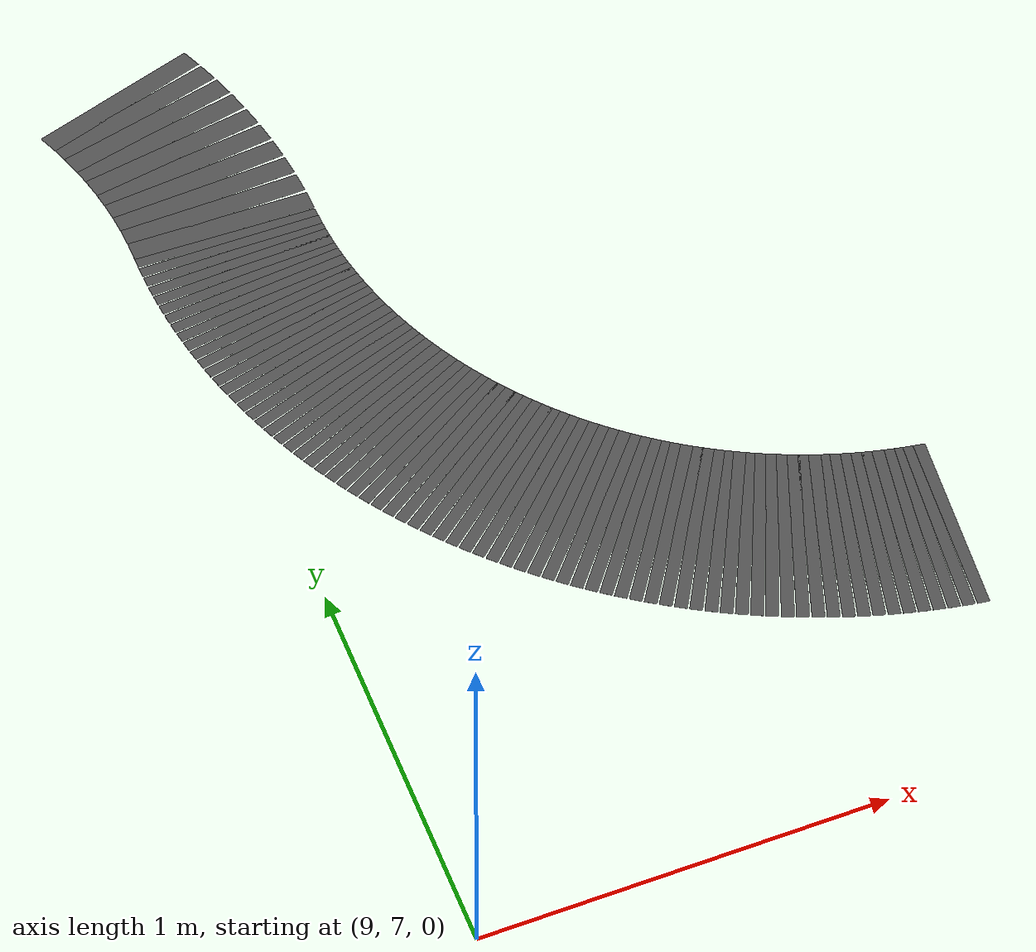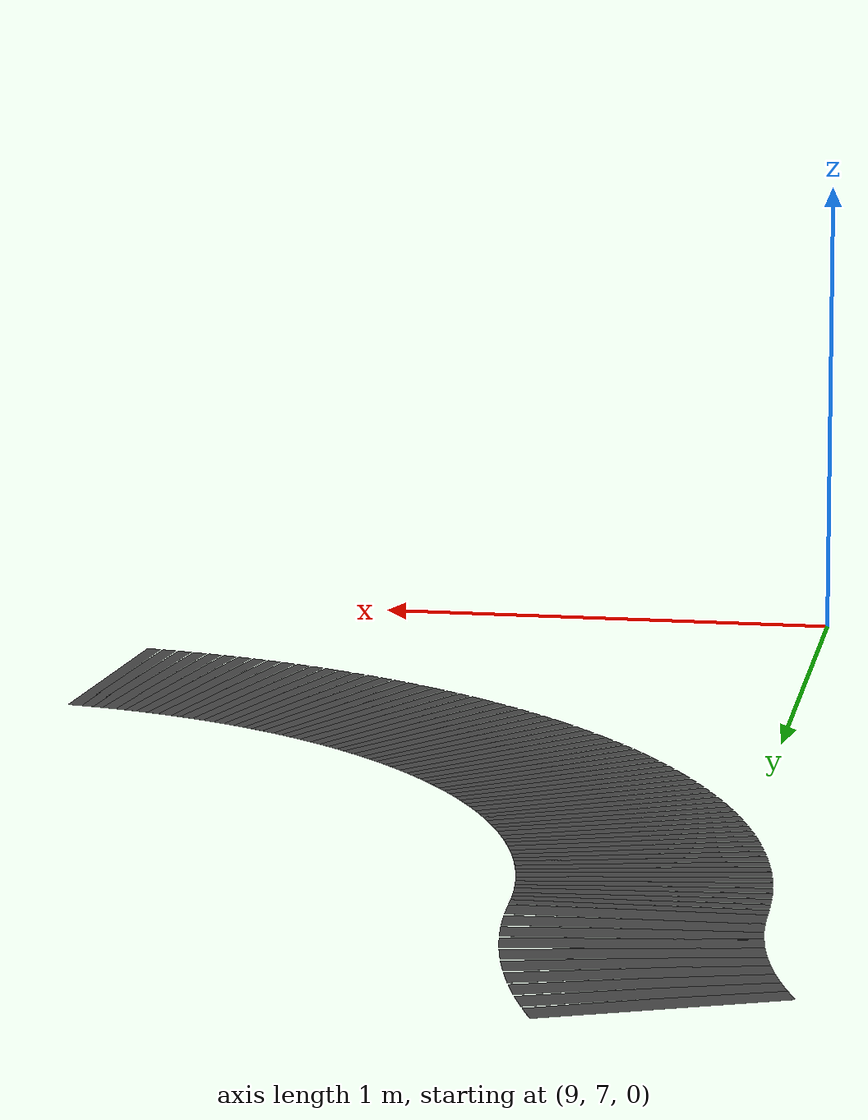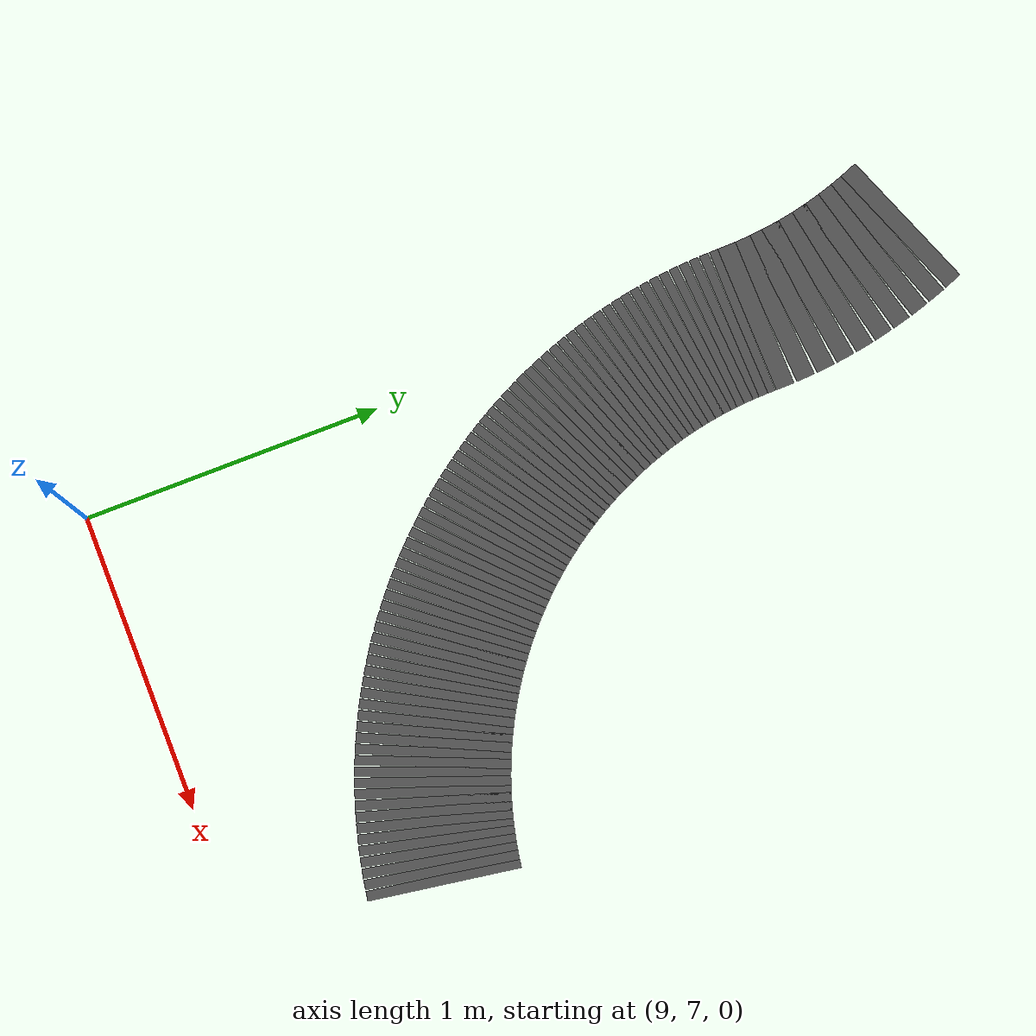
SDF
<sdf version="1.7">
 <model name="default">
  <model name="road_seg_145">
   <static>1</static>
   <link name="road_link">
    <visual name="road_visual">
     <geometry><box><size>0.031318 0.5 0.0001</size></box></geometry>
     <material>
      <script>
       <uri>model://road_material/materials/scripts</uri>
       <uri>model://road_material/materials/textures</uri>
       <name>MyRoad/Road</name>
      </script>
     </material>
    </visual>
    <collision name="road_collision"><geometry><box><size>0.031318 0.5 0.0001</size></box></geometry></collision>
   </link>
   <pose>10.4912 7.66771 0 0 -0 2.99247</pose>
  </model>
  <model name="road_seg_146">
   <static>1</static>
   <link name="road_link">
    <visual name="road_visual">
     <geometry><box><size>0.031318 0.5 0.0001</size></box></geometry>
     <material>
      <script>
       <uri>model://road_material/materials/scripts</uri>
       <uri>model://road_material/materials/textures</uri>
       <name>MyRoad/Road</name>
      </script>
     </material>
    </visual>
    <collision name="road_collision"><geometry><box><size>0.031318 0.5 0.0001</size></box></geometry></collision>
   </link>
   <pose>10.4603 7.67267 0 0 -0 2.97258</pose>
  </model>
  <model name="road_seg_147">
   <static>1</static>
   <link name="road_link">
    <visual name="road_visual">
     <geometry><box><size>0.031318 0.5 0.0001</size></box></geometry>
     <material>
      <script>
       <uri>model://road_material/materials/scripts</uri>
       <uri>model://road_material/materials/textures</uri>
       <name>MyRoad/Road</name>
      </script>
     </material>
    </visual>
    <collision name="road_collision"><geometry><box><size>0.031318 0.5 0.0001</size></box></geometry></collision>
   </link>
   <pose>10.4295 7.67825 0 0 -0 2.9527</pose>
  </model>
  <model name="road_seg_148">
   <static>1</static>
   <link name="road_link">
    <visual name="road_visual">
     <geometry><box><size>0.031318 0.5 0.0001</size></box></geometry>
     <material>
      <script>
       <uri>model://road_material/materials/scripts</uri>
       <uri>model://road_material/materials/textures</uri>
       <name>MyRoad/Road</name>
      </script>
     </material>
    </visual>
    <collision name="road_collision"><geometry><box><size>0.031318 0.5 0.0001</size></box></geometry></collision>
   </link>
   <pose>10.3988 7.68443 0 0 -0 2.93282</pose>
  </model>
  <model name="road_seg_149">
   <static>1</static>
   <link name="road_link">
    <visual name="road_visual">
     <geometry><box><size>0.031318 0.5 0.0001</size></box></geometry>
     <material>
      <script>
       <uri>model://road_material/materials/scripts</uri>
       <uri>model://road_material/materials/textures</uri>
       <name>MyRoad/Road</name>
      </script>
     </material>
    </visual>
    <collision name="road_collision"><geometry><box><size>0.031318 0.5 0.0001</size></box></geometry></collision>
   </link>
   <pose>10.3682 7.69123 0 0 -0 2.91293</pose>
  </model>
  <model name="road_seg_150">
   <static>1</static>
   <link name="road_link">
    <visual name="road_visual">
     <geometry><box><size>0.031318 0.5 0.0001</size></box></geometry>
     <material>
      <script>
       <uri>model://road_material/materials/scripts</uri>
       <uri>model://road_material/materials/textures</uri>
       <name>MyRoad/Road</name>
      </script>
     </material>
    </visual>
    <collision name="road_collision"><geometry><box><size>0.031318 0.5 0.0001</size></box></geometry></collision>
   </link>
   <pose>10.3378 7.69863 0 0 -0 2.89305</pose>
  </model>
  <model name="road_seg_151">
   <static>1</static>
   <link name="road_link">
    <visual name="road_visual">
     <geometry><box><size>0.031318 0.5 0.0001</size></box></geometry>
     <material>
      <script>
       <uri>model://road_material/materials/scripts</uri>
       <uri>model://road_material/materials/textures</uri>
       <name>MyRoad/Road</name>
      </script>
     </material>
    </visual>
    <collision name="road_collision"><geometry><box><size>0.031318 0.5 0.0001</size></box></geometry></collision>
   </link>
   <pose>10.3075 7.70664 0 0 -0 2.87317</pose>
  </model>
  <model name="road_seg_152">
   <static>1</static>
   <link name="road_link">
    <visual name="road_visual">
     <geometry><box><size>0.031318 0.5 0.0001</size></box></geometry>
     <material>
      <script>
       <uri>model://road_material/materials/scripts</uri>
       <uri>model://road_material/materials/textures</uri>
       <name>MyRoad/Road</name>
      </script>
     </material>
    </visual>
    <collision name="road_collision"><geometry><box><size>0.031318 0.5 0.0001</size></box></geometry></collision>
   </link>
   <pose>10.2774 7.71524 0 0 -0 2.85328</pose>
  </model>
  <model name="road_seg_153">
   <static>1</static>
   <link name="road_link">
    <visual name="road_visual">
     <geometry><box><size>0.031318 0.5 0.0001</size></box></geometry>
     <material>
      <script>
       <uri>model://road_material/materials/scripts</uri>
       <uri>model://road_material/materials/textures</uri>
       <name>MyRoad/Road</name>
      </script>
     </material>
    </visual>
    <collision name="road_collision"><geometry><box><size>0.031318 0.5 0.0001</size></box></geometry></collision>
   </link>
   <pose>10.2475 7.72444 0 0 -0 2.8334</pose>
  </model>
  <model name="road_seg_154">
   <static>1</static>
   <link name="road_link">
    <visual name="road_visual">
     <geometry><box><size>0.031318 0.5 0.0001</size></box></geometry>
     <material>
      <script>
       <uri>model://road_material/materials/scripts</uri>
       <uri>model://road_material/materials/textures</uri>
       <name>MyRoad/Road</name>
      </script>
     </material>
    </visual>
    <collision name="road_collision"><geometry><box><size>0.031318 0.5 0.0001</size></box></geometry></collision>
   </link>
   <pose>10.2177 7.73424 0 0 -0 2.81351</pose>
  </model>
  <model name="road_seg_155">
   <static>1</static>
   <link name="road_link">
    <visual name="road_visual">
     <geometry><box><size>0.031318 0.5 0.0001</size></box></geometry>
     <material>
      <script>
       <uri>model://road_material/materials/scripts</uri>
       <uri>model://road_material/materials/textures</uri>
       <name>MyRoad/Road</name>
      </script>
     </material>
    </visual>
    <collision name="road_collision"><geometry><box><size>0.031318 0.5 0.0001</size></box></geometry></collision>
   </link>
   <pose>10.1882 7.74462 0 0 -0 2.79363</pose>
  </model>
  <model name="road_seg_156">
   <static>1</static>
   <link name="road_link">
    <visual name="road_visual">
     <geometry><box><size>0.031318 0.5 0.0001</size></box></geometry>
     <material>
      <script>
       <uri>model://road_material/materials/scripts</uri>
       <uri>model://road_material/materials/textures</uri>
       <name>MyRoad/Road</name>
      </script>
     </material>
    </visual>
    <collision name="road_collision"><geometry><box><size>0.031318 0.5 0.0001</size></box></geometry></collision>
   </link>
   <pose>10.1589 7.75559 0 0 -0 2.77375</pose>
  </model>
  <model name="road_seg_157">
   <static>1</static>
   <link name="road_link">
    <visual name="road_visual">
     <geometry><box><size>0.031318 0.5 0.0001</size></box></geometry>
     <material>
      <script>
       <uri>model://road_material/materials/scripts</uri>
       <uri>model://road_material/materials/textures</uri>
       <name>MyRoad/Road</name>
      </script>
     </material>
    </visual>
    <collision name="road_collision"><geometry><box><size>0.031318 0.5 0.0001</size></box></geometry></collision>
   </link>
   <pose>10.1297 7.76715 0 0 -0 2.75386</pose>
  </model>
  <model name="road_seg_158">
   <static>1</static>
   <link name="road_link">
    <visual name="road_visual">
     <geometry><box><size>0.031318 0.5 0.0001</size></box></geometry>
     <material>
      <script>
       <uri>model://road_material/materials/scripts</uri>
       <uri>model://road_material/materials/textures</uri>
       <name>MyRoad/Road</name>
      </script>
     </material>
    </visual>
    <collision name="road_collision"><geometry><box><size>0.031318 0.5 0.0001</size></box></geometry></collision>
   </link>
   <pose>10.1009 7.77927 0 0 -0 2.73398</pose>
  </model>
  <model name="road_seg_159">
   <static>1</static>
   <link name="road_link">
    <visual name="road_visual">
     <geometry><box><size>0.031318 0.5 0.0001</size></box></geometry>
     <material>
      <script>
       <uri>model://road_material/materials/scripts</uri>
       <uri>model://road_material/materials/textures</uri>
       <name>MyRoad/Road</name>
      </script>
     </material>
    </visual>
    <collision name="road_collision"><geometry><box><size>0.031318 0.5 0.0001</size></box></geometry></collision>
   </link>
   <pose>10.0722 7.79197 0 0 -0 2.7141</pose>
  </model>
  <model name="road_seg_160">
   <static>1</static>
   <link name="road_link">
    <visual name="road_visual">
     <geometry><box><size>0.031318 0.5 0.0001</size></box></geometry>
     <material>
      <script>
       <uri>model://road_material/materials/scripts</uri>
       <uri>model://road_material/materials/textures</uri>
       <name>MyRoad/Road</name>
      </script>
     </material>
    </visual>
    <collision name="road_collision"><geometry><box><size>0.031318 0.5 0.0001</size></box></geometry></collision>
   </link>
   <pose>10.0439 7.80524 0 0 -0 2.69421</pose>
  </model>
  <model name="road_seg_161">
   <static>1</static>
   <link name="road_link">
    <visual name="road_visual">
     <geometry><box><size>0.031318 0.5 0.0001</size></box></geometry>
     <material>
      <script>
       <uri>model://road_material/materials/scripts</uri>
       <uri>model://road_material/materials/textures</uri>
       <name>MyRoad/Road</name>
      </script>
     </material>
    </visual>
    <collision name="road_collision"><geometry><box><size>0.031318 0.5 0.0001</size></box></geometry></collision>
   </link>
   <pose>10.0158 7.81907 0 0 -0 2.67433</pose>
  </model>
  <model name="road_seg_162">
   <static>1</static>
   <link name="road_link">
    <visual name="road_visual">
     <geometry><box><size>0.031318 0.5 0.0001</size></box></geometry>
     <material>
      <script>
       <uri>model://road_material/materials/scripts</uri>
       <uri>model://road_material/materials/textures</uri>
       <name>MyRoad/Road</name>
      </script>
     </material>
    </visual>
    <collision name="road_collision"><geometry><box><size>0.031318 0.5 0.0001</size></box></geometry></collision>
   </link>
   <pose>9.98797 7.83345 0 0 -0 2.65445</pose>
  </model>
  <model name="road_seg_163">
   <static>1</static>
   <link name="road_link">
    <visual name="road_visual">
     <geometry><box><size>0.031318 0.5 0.0001</size></box></geometry>
     <material>
      <script>
       <uri>model://road_material/materials/scripts</uri>
       <uri>model://road_material/materials/textures</uri>
       <name>MyRoad/Road</name>
      </script>
     </material>
    </visual>
    <collision name="road_collision"><geometry><box><size>0.031318 0.5 0.0001</size></box></geometry></collision>
   </link>
   <pose>9.96044 7.84838 0 0 -0 2.63456</pose>
  </model>
  <model name="road_seg_164">
   <static>1</static>
   <link name="road_link">
    <visual name="road_visual">
     <geometry><box><size>0.031318 0.5 0.0001</size></box></geometry>
     <material>
      <script>
       <uri>model://road_material/materials/scripts</uri>
       <uri>model://road_material/materials/textures</uri>
       <name>MyRoad/Road</name>
      </script>
     </material>
    </visual>
    <collision name="road_collision"><geometry><box><size>0.031318 0.5 0.0001</size></box></geometry></collision>
   </link>
   <pose>9.93322 7.86386 0 0 -0 2.61468</pose>
  </model>
  <model name="road_seg_165">
   <static>1</static>
   <link name="road_link">
    <visual name="road_visual">
     <geometry><box><size>0.031318 0.5 0.0001</size></box></geometry>
     <material>
      <script>
       <uri>model://road_material/materials/scripts</uri>
       <uri>model://road_material/materials/textures</uri>
       <name>MyRoad/Road</name>
      </script>
     </material>
    </visual>
    <collision name="road_collision"><geometry><box><size>0.031318 0.5 0.0001</size></box></geometry></collision>
   </link>
   <pose>9.90631 7.87988 0 0 -0 2.5948</pose>
  </model>
  <model name="road_seg_166">
   <static>1</static>
   <link name="road_link">
    <visual name="road_visual">
     <geometry><box><size>0.031318 0.5 0.0001</size></box></geometry>
     <material>
      <script>
       <uri>model://road_material/materials/scripts</uri>
       <uri>model://road_material/materials/textures</uri>
       <name>MyRoad/Road</name>
      </script>
     </material>
    </visual>
    <collision name="road_collision"><geometry><box><size>0.031318 0.5 0.0001</size></box></geometry></collision>
   </link>
   <pose>9.87972 7.89642 0 0 -0 2.57491</pose>
  </model>
  <model name="road_seg_167">
   <static>1</static>
   <link name="road_link">
    <visual name="road_visual">
     <geometry><box><size>0.031318 0.5 0.0001</size></box></geometry>
     <material>
      <script>
       <uri>model://road_material/materials/scripts</uri>
       <uri>model://road_material/materials/textures</uri>
       <name>MyRoad/Road</name>
      </script>
     </material>
    </visual>
    <collision name="road_collision"><geometry><box><size>0.031318 0.5 0.0001</size></box></geometry></collision>
   </link>
   <pose>9.85347 7.9135 0 0 -0 2.55503</pose>
  </model>
  <model name="road_seg_168">
   <static>1</static>
   <link name="road_link">
    <visual name="road_visual">
     <geometry><box><size>0.031318 0.5 0.0001</size></box></geometry>
     <material>
      <script>
       <uri>model://road_material/materials/scripts</uri>
       <uri>model://road_material/materials/textures</uri>
       <name>MyRoad/Road</name>
      </script>
     </material>
    </visual>
    <collision name="road_collision"><geometry><box><size>0.031318 0.5 0.0001</size></box></geometry></collision>
   </link>
   <pose>9.82756 7.93109 0 0 -0 2.53515</pose>
  </model>
  <model name="road_seg_169">
   <static>1</static>
   <link name="road_link">
    <visual name="road_visual">
     <geometry><box><size>0.031318 0.5 0.0001</size></box></geometry>
     <material>
      <script>
       <uri>model://road_material/materials/scripts</uri>
       <uri>model://road_material/materials/textures</uri>
       <name>MyRoad/Road</name>
      </script>
     </material>
    </visual>
    <collision name="road_collision"><geometry><box><size>0.031318 0.5 0.0001</size></box></geometry></collision>
   </link>
   <pose>9.80201 7.94919 0 0 -0 2.51526</pose>
  </model>
  <model name="road_seg_170">
   <static>1</static>
   <link name="road_link">
    <visual name="road_visual">
     <geometry><box><size>0.031318 0.5 0.0001</size></box></geometry>
     <material>
      <script>
       <uri>model://road_material/materials/scripts</uri>
       <uri>model://road_material/materials/textures</uri>
       <name>MyRoad/Road</name>
      </script>
     </material>
    </visual>
    <collision name="road_collision"><geometry><box><size>0.031318 0.5 0.0001</size></box></geometry></collision>
   </link>
   <pose>9.77682 7.9678 0 0 -0 2.49538</pose>
  </model>
  <model name="road_seg_171">
   <static>1</static>
   <link name="road_link">
    <visual name="road_visual">
     <geometry><box><size>0.031318 0.5 0.0001</size></box></geometry>
     <material>
      <script>
       <uri>model://road_material/materials/scripts</uri>
       <uri>model://road_material/materials/textures</uri>
       <name>MyRoad/Road</name>
      </script>
     </material>
    </visual>
    <collision name="road_collision"><geometry><box><size>0.031318 0.5 0.0001</size></box></geometry></collision>
   </link>
   <pose>9.75201 7.98691 0 0 -0 2.4755</pose>
  </model>
  <model name="road_seg_172">
   <static>1</static>
   <link name="road_link">
    <visual name="road_visual">
     <geometry><box><size>0.031318 0.5 0.0001</size></box></geometry>
     <material>
      <script>
       <uri>model://road_material/materials/scripts</uri>
       <uri>model://road_material/materials/textures</uri>
       <name>MyRoad/Road</name>
      </script>
     </material>
    </visual>
    <collision name="road_collision"><geometry><box><size>0.031318 0.5 0.0001</size></box></geometry></collision>
   </link>
   <pose>9.72758 8.0065 0 0 -0 2.45561</pose>
  </model>
  <model name="road_seg_173">
   <static>1</static>
   <link name="road_link">
    <visual name="road_visual">
     <geometry><box><size>0.031318 0.5 0.0001</size></box></geometry>
     <material>
      <script>
       <uri>model://road_material/materials/scripts</uri>
       <uri>model://road_material/materials/textures</uri>
       <name>MyRoad/Road</name>
      </script>
     </material>
    </visual>
    <collision name="road_collision"><geometry><box><size>0.031318 0.5 0.0001</size></box></geometry></collision>
   </link>
   <pose>9.70354 8.02658 0 0 -0 2.43573</pose>
  </model>
  <model name="road_seg_174">
   <static>1</static>
   <link name="road_link">
    <visual name="road_visual">
     <geometry><box><size>0.031318 0.5 0.0001</size></box></geometry>
     <material>
      <script>
       <uri>model://road_material/materials/scripts</uri>
       <uri>model://road_material/materials/textures</uri>
       <name>MyRoad/Road</name>
      </script>
     </material>
    </visual>
    <collision name="road_collision"><geometry><box><size>0.031318 0.5 0.0001</size></box></geometry></collision>
   </link>
   <pose>9.67991 8.04713 0 0 -0 2.41584</pose>
  </model>
  <model name="road_seg_175">
   <static>1</static>
   <link name="road_link">
    <visual name="road_visual">
     <geometry><box><size>0.031318 0.5 0.0001</size></box></geometry>
     <material>
      <script>
       <uri>model://road_material/materials/scripts</uri>
       <uri>model://road_material/materials/textures</uri>
       <name>MyRoad/Road</name>
      </script>
     </material>
    </visual>
    <collision name="road_collision"><geometry><box><size>0.031318 0.5 0.0001</size></box></geometry></collision>
   </link>
   <pose>9.6567 8.06814 0 0 -0 2.39596</pose>
  </model>
  <model name="road_seg_176">
   <static>1</static>
   <link name="road_link">
    <visual name="road_visual">
     <geometry><box><size>0.031318 0.5 0.0001</size></box></geometry>
     <material>
      <script>
       <uri>model://road_material/materials/scripts</uri>
       <uri>model://road_material/materials/textures</uri>
       <name>MyRoad/Road</name>
      </script>
     </material>
    </visual>
    <collision name="road_collision"><geometry><box><size>0.031318 0.5 0.0001</size></box></geometry></collision>
   </link>
   <pose>9.6339 8.08962 0 0 -0 2.37608</pose>
  </model>
  <model name="road_seg_177">
   <static>1</static>
   <link name="road_link">
    <visual name="road_visual">
     <geometry><box><size>0.031318 0.5 0.0001</size></box></geometry>
     <material>
      <script>
       <uri>model://road_material/materials/scripts</uri>
       <uri>model://road_material/materials/textures</uri>
       <name>MyRoad/Road</name>
      </script>
     </material>
    </visual>
    <collision name="road_collision"><geometry><box><size>0.031318 0.5 0.0001</size></box></geometry></collision>
   </link>
   <pose>9.61154 8.11154 0 0 -0 2.35619</pose>
  </model>
  <model name="road_seg_178">
   <static>1</static>
   <link name="road_link">
    <visual name="road_visual">
     <geometry><box><size>0.031318 0.5 0.0001</size></box></geometry>
     <material>
      <script>
       <uri>model://road_material/materials/scripts</uri>
       <uri>model://road_material/materials/textures</uri>
       <name>MyRoad/Road</name>
      </script>
     </material>
    </visual>
    <collision name="road_collision"><geometry><box><size>0.031318 0.5 0.0001</size></box></geometry></collision>
   </link>
   <pose>9.58962 8.1339 0 0 -0 2.33631</pose>
  </model>
  <model name="road_seg_179">
   <static>1</static>
   <link name="road_link">
    <visual name="road_visual">
     <geometry><box><size>0.031318 0.5 0.0001</size></box></geometry>
     <material>
      <script>
       <uri>model://road_material/materials/scripts</uri>
       <uri>model://road_material/materials/textures</uri>
       <name>MyRoad/Road</name>
      </script>
     </material>
    </visual>
    <collision name="road_collision"><geometry><box><size>0.031318 0.5 0.0001</size></box></geometry></collision>
   </link>
   <pose>9.56814 8.1567 0 0 -0 2.31643</pose>
  </model>
  <model name="road_seg_180">
   <static>1</static>
   <link name="road_link">
    <visual name="road_visual">
     <geometry><box><size>0.031318 0.5 0.0001</size></box></geometry>
     <material>
      <script>
       <uri>model://road_material/materials/scripts</uri>
       <uri>model://road_material/materials/textures</uri>
       <name>MyRoad/Road</name>
      </script>
     </material>
    </visual>
    <collision name="road_collision"><geometry><box><size>0.031318 0.5 0.0001</size></box></geometry></collision>
   </link>
   <pose>9.54713 8.17991 0 0 -0 2.29654</pose>
  </model>
  <model name="road_seg_181">
   <static>1</static>
   <link name="road_link">
    <visual name="road_visual">
     <geometry><box><size>0.031318 0.5 0.0001</size></box></geometry>
     <material>
      <script>
       <uri>model://road_material/materials/scripts</uri>
       <uri>model://road_material/materials/textures</uri>
       <name>MyRoad/Road</name>
      </script>
     </material>
    </visual>
    <collision name="road_collision"><geometry><box><size>0.031318 0.5 0.0001</size></box></geometry></collision>
   </link>
   <pose>9.52658 8.20354 0 0 -0 2.27666</pose>
  </model>
  <model name="road_seg_182">
   <static>1</static>
   <link name="road_link">
    <visual name="road_visual">
     <geometry><box><size>0.031318 0.5 0.0001</size></box></geometry>
     <material>
      <script>
       <uri>model://road_material/materials/scripts</uri>
       <uri>model://road_material/materials/textures</uri>
       <name>MyRoad/Road</name>
      </script>
     </material>
    </visual>
    <collision name="road_collision"><geometry><box><size>0.031318 0.5 0.0001</size></box></geometry></collision>
   </link>
   <pose>9.5065 8.22758 0 0 -0 2.25678</pose>
  </model>
  <model name="road_seg_183">
   <static>1</static>
   <link name="road_link">
    <visual name="road_visual">
     <geometry><box><size>0.031318 0.5 0.0001</size></box></geometry>
     <material>
      <script>
       <uri>model://road_material/materials/scripts</uri>
       <uri>model://road_material/materials/textures</uri>
       <name>MyRoad/Road</name>
      </script>
     </material>
    </visual>
    <collision name="road_collision"><geometry><box><size>0.031318 0.5 0.0001</size></box></geometry></collision>
   </link>
   <pose>9.48691 8.25201 0 0 -0 2.23689</pose>
  </model>
  <model name="road_seg_184">
   <static>1</static>
   <link name="road_link">
    <visual name="road_visual">
     <geometry><box><size>0.031318 0.5 0.0001</size></box></geometry>
     <material>
      <script>
       <uri>model://road_material/materials/scripts</uri>
       <uri>model://road_material/materials/textures</uri>
       <name>MyRoad/Road</name>
      </script>
     </material>
    </visual>
    <collision name="road_collision"><geometry><box><size>0.031318 0.5 0.0001</size></box></geometry></collision>
   </link>
   <pose>9.4678 8.27682 0 0 -0 2.21701</pose>
  </model>
  <model name="road_seg_185">
   <static>1</static>
   <link name="road_link">
    <visual name="road_visual">
     <geometry><box><size>0.031318 0.5 0.0001</size></box></geometry>
     <material>
      <script>
       <uri>model://road_material/materials/scripts</uri>
       <uri>model://road_material/materials/textures</uri>
       <name>MyRoad/Road</name>
      </script>
     </material>
    </visual>
    <collision name="road_collision"><geometry><box><size>0.031318 0.5 0.0001</size></box></geometry></collision>
   </link>
   <pose>9.44919 8.30201 0 0 -0 2.19713</pose>
  </model>
  <model name="road_seg_186">
   <static>1</static>
   <link name="road_link">
    <visual name="road_visual">
     <geometry><box><size>0.031318 0.5 0.0001</size></box></geometry>
     <material>
      <script>
       <uri>model://road_material/materials/scripts</uri>
       <uri>model://road_material/materials/textures</uri>
       <name>MyRoad/Road</name>
      </script>
     </material>
    </visual>
    <collision name="road_collision"><geometry><box><size>0.031318 0.5 0.0001</size></box></geometry></collision>
   </link>
   <pose>9.43109 8.32756 0 0 -0 2.17724</pose>
  </model>
  <model name="road_seg_187">
   <static>1</static>
   <link name="road_link">
    <visual name="road_visual">
     <geometry><box><size>0.031318 0.5 0.0001</size></box></geometry>
     <material>
      <script>
       <uri>model://road_material/materials/scripts</uri>
       <uri>model://road_material/materials/textures</uri>
       <name>MyRoad/Road</name>
      </script>
     </material>
    </visual>
    <collision name="road_collision"><geometry><box><size>0.031318 0.5 0.0001</size></box></geometry></collision>
   </link>
   <pose>9.4135 8.35347 0 0 -0 2.15736</pose>
  </model>
  <model name="road_seg_188">
   <static>1</static>
   <link name="road_link">
    <visual name="road_visual">
     <geometry><box><size>0.031318 0.5 0.0001</size></box></geometry>
     <material>
      <script>
       <uri>model://road_material/materials/scripts</uri>
       <uri>model://road_material/materials/textures</uri>
       <name>MyRoad/Road</name>
      </script>
     </material>
    </visual>
    <collision name="road_collision"><geometry><box><size>0.031318 0.5 0.0001</size></box></geometry></collision>
   </link>
   <pose>9.39642 8.37972 0 0 -0 2.13748</pose>
  </model>
  <model name="road_seg_189">
   <static>1</static>
   <link name="road_link">
    <visual name="road_visual">
     <geometry><box><size>0.031318 0.5 0.0001</size></box></geometry>
     <material>
      <script>
       <uri>model://road_material/materials/scripts</uri>
       <uri>model://road_material/materials/textures</uri>
       <name>MyRoad/Road</name>
      </script>
     </material>
    </visual>
    <collision name="road_collision"><geometry><box><size>0.031318 0.5 0.0001</size></box></geometry></collision>
   </link>
   <pose>9.37988 8.40631 0 0 -0 2.11759</pose>
  </model>
  <model name="road_seg_190">
   <static>1</static>
   <link name="road_link">
    <visual name="road_visual">
     <geometry><box><size>0.031318 0.5 0.0001</size></box></geometry>
     <material>
      <script>
       <uri>model://road_material/materials/scripts</uri>
       <uri>model://road_material/materials/textures</uri>
       <name>MyRoad/Road</name>
      </script>
     </material>
    </visual>
    <collision name="road_collision"><geometry><box><size>0.031318 0.5 0.0001</size></box></geometry></collision>
   </link>
   <pose>9.36386 8.43322 0 0 -0 2.09771</pose>
  </model>
  <model name="road_seg_191">
   <static>1</static>
   <link name="road_link">
    <visual name="road_visual">
     <geometry><box><size>0.031318 0.5 0.0001</size></box></geometry>
     <material>
      <script>
       <uri>model://road_material/materials/scripts</uri>
       <uri>model://road_material/materials/textures</uri>
       <name>MyRoad/Road</name>
      </script>
     </material>
    </visual>
    <collision name="road_collision"><geometry><box><size>0.031318 0.5 0.0001</size></box></geometry></collision>
   </link>
   <pose>9.34838 8.46044 0 0 -0 2.07783</pose>
  </model>
  <model name="road_seg_192">
   <static>1</static>
   <link name="road_link">
    <visual name="road_visual">
     <geometry><box><size>0.031318 0.5 0.0001</size></box></geometry>
     <material>
      <script>
       <uri>model://road_material/materials/scripts</uri>
       <uri>model://road_material/materials/textures</uri>
       <name>MyRoad/Road</name>
      </script>
     </material>
    </visual>
    <collision name="road_collision"><geometry><box><size>0.031318 0.5 0.0001</size></box></geometry></collision>
   </link>
   <pose>9.33345 8.48797 0 0 -0 2.05794</pose>
  </model>
  <model name="road_seg_193">
   <static>1</static>
   <link name="road_link">
    <visual name="road_visual">
     <geometry><box><size>0.031318 0.5 0.0001</size></box></geometry>
     <material>
      <script>
       <uri>model://road_material/materials/scripts</uri>
       <uri>model://road_material/materials/textures</uri>
       <name>MyRoad/Road</name>
      </script>
     </material>
    </visual>
    <collision name="road_collision"><geometry><box><size>0.031318 0.5 0.0001</size></box></geometry></collision>
   </link>
   <pose>9.31907 8.51578 0 0 -0 2.03806</pose>
  </model>
  <model name="road_seg_194">
   <static>1</static>
   <link name="road_link">
    <visual name="road_visual">
     <geometry><box><size>0.031318 0.5 0.0001</size></box></geometry>
     <material>
      <script>
       <uri>model://road_material/materials/scripts</uri>
       <uri>model://road_material/materials/textures</uri>
       <name>MyRoad/Road</name>
      </script>
     </material>
    </visual>
    <collision name="road_collision"><geometry><box><size>0.031318 0.5 0.0001</size></box></geometry></collision>
   </link>
   <pose>9.30524 8.54388 0 0 -0 2.01818</pose>
  </model>
  <model name="road_seg_195">
   <static>1</static>
   <link name="road_link">
    <visual name="road_visual">
     <geometry><box><size>0.031318 0.5 0.0001</size></box></geometry>
     <material>
      <script>
       <uri>model://road_material/materials/scripts</uri>
       <uri>model://road_material/materials/textures</uri>
       <name>MyRoad/Road</name>
      </script>
     </material>
    </visual>
    <collision name="road_collision"><geometry><box><size>0.031318 0.5 0.0001</size></box></geometry></collision>
   </link>
   <pose>9.29197 8.57225 0 0 -0 1.99829</pose>
  </model>
  <model name="road_seg_196">
   <static>1</static>
   <link name="road_link">
    <visual name="road_visual">
     <geometry><box><size>0.031318 0.5 0.0001</size></box></geometry>
     <material>
      <script>
       <uri>model://road_material/materials/scripts</uri>
       <uri>model://road_material/materials/textures</uri>
       <name>MyRoad/Road</name>
      </script>
     </material>
    </visual>
    <collision name="road_collision"><geometry><box><size>0.031318 0.5 0.0001</size></box></geometry></collision>
   </link>
   <pose>9.27927 8.60088 0 0 -0 1.97841</pose>
  </model>
  <model name="road_seg_197">
   <static>1</static>
   <link name="road_link">
    <visual name="road_visual">
     <geometry><box><size>0.031318 0.5 0.0001</size></box></geometry>
     <material>
      <script>
       <uri>model://road_material/materials/scripts</uri>
       <uri>model://road_material/materials/textures</uri>
       <name>MyRoad/Road</name>
      </script>
     </material>
    </visual>
    <collision name="road_collision"><geometry><box><size>0.031318 0.5 0.0001</size></box></geometry></collision>
   </link>
   <pose>9.26715 8.62975 0 0 -0 1.95852</pose>
  </model>
  <model name="road_seg_198">
   <static>1</static>
   <link name="road_link">
    <visual name="road_visual">
     <geometry><box><size>0.031318 0.5 0.0001</size></box></geometry>
     <material>
      <script>
       <uri>model://road_material/materials/scripts</uri>
       <uri>model://road_material/materials/textures</uri>
       <name>MyRoad/Road</name>
      </script>
     </material>
    </visual>
    <collision name="road_collision"><geometry><box><size>0.031318 0.5 0.0001</size></box></geometry></collision>
   </link>
   <pose>9.25559 8.65886 0 0 -0 1.93864</pose>
  </model>
  <model name="road_seg_199">
   <static>1</static>
   <link name="road_link">
    <visual name="road_visual">
     <geometry><box><size>0.031318 0.5 0.0001</size></box></geometry>
     <material>
      <script>
       <uri>model://road_material/materials/scripts</uri>
       <uri>model://road_material/materials/textures</uri>
       <name>MyRoad/Road</name>
      </script>
     </material>
    </visual>
    <collision name="road_collision"><geometry><box><size>0.031318 0.5 0.0001</size></box></geometry></collision>
   </link>
   <pose>9.24462 8.68819 0 0 -0 1.91876</pose>
  </model>
  <model name="road_seg_200">
   <static>1</static>
   <link name="road_link">
    <visual name="road_visual">
     <geometry><box><size>0.031318 0.5 0.0001</size></box></geometry>
     <material>
      <script>
       <uri>model://road_material/materials/scripts</uri>
       <uri>model://road_material/materials/textures</uri>
       <name>MyRoad/Road</name>
      </script>
     </material>
    </visual>
    <collision name="road_collision"><geometry><box><size>0.031318 0.5 0.0001</size></box></geometry></collision>
   </link>
   <pose>9.23424 8.71773 0 0 -0 1.89887</pose>
  </model>
  <model name="road_seg_201">
   <static>1</static>
   <link name="road_link">
    <visual name="road_visual">
     <geometry><box><size>0.031318 0.5 0.0001</size></box></geometry>
     <material>
      <script>
       <uri>model://road_material/materials/scripts</uri>
       <uri>model://road_material/materials/textures</uri>
       <name>MyRoad/Road</name>
      </script>
     </material>
    </visual>
    <collision name="road_collision"><geometry><box><size>0.031318 0.5 0.0001</size></box></geometry></collision>
   </link>
   <pose>9.22444 8.74748 0 0 -0 1.87899</pose>
  </model>
  <model name="road_seg_202">
   <static>1</static>
   <link name="road_link">
    <visual name="road_visual">
     <geometry><box><size>0.031318 0.5 0.0001</size></box></geometry>
     <material>
      <script>
       <uri>model://road_material/materials/scripts</uri>
       <uri>model://road_material/materials/textures</uri>
       <name>MyRoad/Road</name>
      </script>
     </material>
    </visual>
    <collision name="road_collision"><geometry><box><size>0.031318 0.5 0.0001</size></box></geometry></collision>
   </link>
   <pose>9.21524 8.77741 0 0 -0 1.85911</pose>
  </model>
  <model name="road_seg_203">
   <static>1</static>
   <link name="road_link">
    <visual name="road_visual">
     <geometry><box><size>0.031318 0.5 0.0001</size></box></geometry>
     <material>
      <script>
       <uri>model://road_material/materials/scripts</uri>
       <uri>model://road_material/materials/textures</uri>
       <name>MyRoad/Road</name>
      </script>
     </material>
    </visual>
    <collision name="road_collision"><geometry><box><size>0.031318 0.5 0.0001</size></box></geometry></collision>
   </link>
   <pose>9.20664 8.80752 0 0 -0 1.83922</pose>
  </model>
  <model name="road_seg_204">
   <static>1</static>
   <link name="road_link">
    <visual name="road_visual">
     <geometry><box><size>0.031318 0.5 0.0001</size></box></geometry>
     <material>
      <script>
       <uri>model://road_material/materials/scripts</uri>
       <uri>model://road_material/materials/textures</uri>
       <name>MyRoad/Road</name>
      </script>
     </material>
    </visual>
    <collision name="road_collision"><geometry><box><size>0.031318 0.5 0.0001</size></box></geometry></collision>
   </link>
   <pose>9.19863 8.8378 0 0 -0 1.81934</pose>
  </model>
  <model name="road_seg_205">
   <static>1</static>
   <link name="road_link">
    <visual name="road_visual">
     <geometry><box><size>0.031318 0.5 0.0001</size></box></geometry>
     <material>
      <script>
       <uri>model://road_material/materials/scripts</uri>
       <uri>model://road_material/materials/textures</uri>
       <name>MyRoad/Road</name>
      </script>
     </material>
    </visual>
    <collision name="road_collision"><geometry><box><size>0.031318 0.5 0.0001</size></box></geometry></collision>
   </link>
   <pose>9.19123 8.86822 0 0 -0 1.79946</pose>
  </model>
  <model name="road_seg_206">
   <static>1</static>
   <link name="road_link">
    <visual name="road_visual">
     <geometry><box><size>0.031318 0.5 0.0001</size></box></geometry>
     <material>
      <script>
       <uri>model://road_material/materials/scripts</uri>
       <uri>model://road_material/materials/textures</uri>
       <name>MyRoad/Road</name>
      </script>
     </material>
    </visual>
    <collision name="road_collision"><geometry><box><size>0.031318 0.5 0.0001</size></box></geometry></collision>
   </link>
   <pose>9.18443 8.89879 0 0 -0 1.77957</pose>
  </model>
  <model name="road_seg_207">
   <static>1</static>
   <link name="road_link">
    <visual name="road_visual">
     <geometry><box><size>0.031318 0.5 0.0001</size></box></geometry>
     <material>
      <script>
       <uri>model://road_material/materials/scripts</uri>
       <uri>model://road_material/materials/textures</uri>
       <name>MyRoad/Road</name>
      </script>
     </material>
    </visual>
    <collision name="road_collision"><geometry><box><size>0.031318 0.5 0.0001</size></box></geometry></collision>
   </link>
   <pose>9.17825 8.92949 0 0 -0 1.75969</pose>
  </model>
  <model name="road_seg_208">
   <static>1</static>
   <link name="road_link">
    <visual name="road_visual">
     <geometry><box><size>0.031318 0.5 0.0001</size></box></geometry>
     <material>
      <script>
       <uri>model://road_material/materials/scripts</uri>
       <uri>model://road_material/materials/textures</uri>
       <name>MyRoad/Road</name>
      </script>
     </material>
    </visual>
    <collision name="road_collision"><geometry><box><size>0.031318 0.5 0.0001</size></box></geometry></collision>
   </link>
   <pose>9.17267 8.96031 0 0 -0 1.73981</pose>
  </model>
  <model name="road_seg_209">
   <static>1</static>
   <link name="road_link">
    <visual name="road_visual">
     <geometry><box><size>0.031318 0.5 0.0001</size></box></geometry>
     <material>
      <script>
       <uri>model://road_material/materials/scripts</uri>
       <uri>model://road_material/materials/textures</uri>
       <name>MyRoad/Road</name>
      </script>
     </material>
    </visual>
    <collision name="road_collision"><geometry><box><size>0.031318 0.5 0.0001</size></box></geometry></collision>
   </link>
   <pose>9.16771 8.99123 0 0 -0 1.71992</pose>
  </model>
  <model name="road_seg_210">
   <static>1</static>
   <link name="road_link">
    <visual name="road_visual">
     <geometry><box><size>0.031318 0.5 0.0001</size></box></geometry>
     <material>
      <script>
       <uri>model://road_material/materials/scripts</uri>
       <uri>model://road_material/materials/textures</uri>
       <name>MyRoad/Road</name>
      </script>
     </material>
    </visual>
    <collision name="road_collision"><geometry><box><size>0.031318 0.5 0.0001</size></box></geometry></collision>
   </link>
   <pose>9.16337 9.02224 0 0 -0 1.70004</pose>
  </model>
  <model name="road_seg_211">
   <static>1</static>
   <link name="road_link">
    <visual name="road_visual">
     <geometry><box><size>0.031318 0.5 0.0001</size></box></geometry>
     <material>
      <script>
       <uri>model://road_material/materials/scripts</uri>
       <uri>model://road_material/materials/textures</uri>
       <name>MyRoad/Road</name>
      </script>
     </material>
    </visual>
    <collision name="road_collision"><geometry><box><size>0.031318 0.5 0.0001</size></box></geometry></collision>
   </link>
   <pose>9.15964 9.05334 0 0 -0 1.68016</pose>
  </model>
  <model name="road_seg_212">
   <static>1</static>
   <link name="road_link">
    <visual name="road_visual">
     <geometry><box><size>0.031318 0.5 0.0001</size></box></geometry>
     <material>
      <script>
       <uri>model://road_material/materials/scripts</uri>
       <uri>model://road_material/materials/textures</uri>
       <name>MyRoad/Road</name>
      </script>
     </material>
    </visual>
    <collision name="road_collision"><geometry><box><size>0.031318 0.5 0.0001</size></box></geometry></collision>
   </link>
   <pose>9.15653 9.0845 0 0 -0 1.66027</pose>
  </model>
  <model name="road_seg_213">
   <static>1</static>
   <link name="road_link">
    <visual name="road_visual">
     <geometry><box><size>0.031318 0.5 0.0001</size></box></geometry>
     <material>
      <script>
       <uri>model://road_material/materials/scripts</uri>
       <uri>model://road_material/materials/textures</uri>
       <name>MyRoad/Road</name>
      </script>
     </material>
    </visual>
    <collision name="road_collision"><geometry><box><size>0.031318 0.5 0.0001</size></box></geometry></collision>
   </link>
   <pose>9.15405 9.11571 0 0 -0 1.64039</pose>
  </model>
  <model name="road_seg_214">
   <static>1</static>
   <link name="road_link">
    <visual name="road_visual">
     <geometry><box><size>0.031318 0.5 0.0001</size></box></geometry>
     <material>
      <script>
       <uri>model://road_material/materials/scripts</uri>
       <uri>model://road_material/materials/textures</uri>
       <name>MyRoad/Road</name>
      </script>
     </material>
    </visual>
    <collision name="road_collision"><geometry><box><size>0.031318 0.5 0.0001</size></box></geometry></collision>
   </link>
   <pose>9.15218 9.14697 0 0 -0 1.62051</pose>
  </model>
  <model name="road_seg_215">
   <static>1</static>
   <link name="road_link">
    <visual name="road_visual">
     <geometry><box><size>0.031318 0.5 0.0001</size></box></geometry>
     <material>
      <script>
       <uri>model://road_material/materials/scripts</uri>
       <uri>model://road_material/materials/textures</uri>
       <name>MyRoad/Road</name>
      </script>
     </material>
    </visual>
    <collision name="road_collision"><geometry><box><size>0.031318 0.5 0.0001</size></box></geometry></collision>
   </link>
   <pose>9.15093 9.17827 0 0 -0 1.60062</pose>
  </model>
  <model name="road_seg_216">
   <static>1</static>
   <link name="road_link">
    <visual name="road_visual">
     <geometry><box><size>0.031318 0.5 0.0001</size></box></geometry>
     <material>
      <script>
       <uri>model://road_material/materials/scripts</uri>
       <uri>model://road_material/materials/textures</uri>
       <name>MyRoad/Road</name>
      </script>
     </material>
    </visual>
    <collision name="road_collision"><geometry><box><size>0.031318 0.5 0.0001</size></box></geometry></collision>
   </link>
   <pose>9.15031 9.20958 0 0 -0 1.58074</pose>
  </model>
  <model name="road_seg_217">
   <static>1</static>
   <link name="road_link">
    <visual name="road_visual">
     <geometry><box><size>0.062632 0.5 0.0001</size></box></geometry>
     <material>
      <script>
       <uri>model://road_material/materials/scripts</uri>
       <uri>model://road_material/materials/textures</uri>
       <name>MyRoad/Road</name>
      </script>
     </material>
    </visual>
    <collision name="road_collision"><geometry><box><size>0.062632 0.5 0.0001</size></box></geometry></collision>
   </link>
   <pose>9.14953 9.25654 0 0 -0 1.59068</pose>
  </model>
  <model name="road_seg_218">
   <static>1</static>
   <link name="road_link">
    <visual name="road_visual">
     <geometry><box><size>0.062632 0.5 0.0001</size></box></geometry>
     <material>
      <script>
       <uri>model://road_material/materials/scripts</uri>
       <uri>model://road_material/materials/textures</uri>
       <name>MyRoad/Road</name>
      </script>
     </material>
    </visual>
    <collision name="road_collision"><geometry><box><size>0.062632 0.5 0.0001</size></box></geometry></collision>
   </link>
   <pose>9.14704 9.31911 0 0 -0 1.63045</pose>
  </model>
  <model name="road_seg_219">
   <static>1</static>
   <link name="road_link">
    <visual name="road_visual">
     <geometry><box><size>0.062632 0.5 0.0001</size></box></geometry>
     <material>
      <script>
       <uri>model://road_material/materials/scripts</uri>
       <uri>model://road_material/materials/textures</uri>
       <name>MyRoad/Road</name>
      </script>
     </material>
    </visual>
    <collision name="road_collision"><geometry><box><size>0.062632 0.5 0.0001</size></box></geometry></collision>
   </link>
   <pose>9.14207 9.38154 0 0 -0 1.67021</pose>
  </model>
  <model name="road_seg_220">
   <static>1</static>
   <link name="road_link">
    <visual name="road_visual">
     <geometry><box><size>0.062632 0.5 0.0001</size></box></geometry>
     <material>
      <script>
       <uri>model://road_material/materials/scripts</uri>
       <uri>model://road_material/materials/textures</uri>
       <name>MyRoad/Road</name>
      </script>
     </material>
    </visual>
    <collision name="road_collision"><geometry><box><size>0.062632 0.5 0.0001</size></box></geometry></collision>
   </link>
   <pose>9.13462 9.44371 0 0 -0 1.70998</pose>
  </model>
  <model name="road_seg_221">
   <static>1</static>
   <link name="road_link">
    <visual name="road_visual">
     <geometry><box><size>0.062632 0.5 0.0001</size></box></geometry>
     <material>
      <script>
       <uri>model://road_material/materials/scripts</uri>
       <uri>model://road_material/materials/textures</uri>
       <name>MyRoad/Road</name>
      </script>
     </material>
    </visual>
    <collision name="road_collision"><geometry><box><size>0.062632 0.5 0.0001</size></box></geometry></collision>
   </link>
   <pose>9.1247 9.50554 0 0 -0 1.74975</pose>
  </model>
  <model name="road_seg_222">
   <static>1</static>
   <link name="road_link">
    <visual name="road_visual">
     <geometry><box><size>0.062632 0.5 0.0001</size></box></geometry>
     <material>
      <script>
       <uri>model://road_material/materials/scripts</uri>
       <uri>model://road_material/materials/textures</uri>
       <name>MyRoad/Road</name>
      </script>
     </material>
    </visual>
    <collision name="road_collision"><geometry><box><size>0.062632 0.5 0.0001</size></box></geometry></collision>
   </link>
   <pose>9.11233 9.56692 0 0 -0 1.78951</pose>
  </model>
  <model name="road_seg_223">
   <static>1</static>
   <link name="road_link">
    <visual name="road_visual">
     <geometry><box><size>0.062632 0.5 0.0001</size></box></geometry>
     <material>
      <script>
       <uri>model://road_material/materials/scripts</uri>
       <uri>model://road_material/materials/textures</uri>
       <name>MyRoad/Road</name>
      </script>
     </material>
    </visual>
    <collision name="road_collision"><geometry><box><size>0.062632 0.5 0.0001</size></box></geometry></collision>
   </link>
   <pose>9.09753 9.62777 0 0 -0 1.82928</pose>
  </model>
  <model name="road_seg_224">
   <static>1</static>
   <link name="road_link">
    <visual name="road_visual">
     <geometry><box><size>0.062632 0.5 0.0001</size></box></geometry>
     <material>
      <script>
       <uri>model://road_material/materials/scripts</uri>
       <uri>model://road_material/materials/textures</uri>
       <name>MyRoad/Road</name>
      </script>
     </material>
    </visual>
    <collision name="road_collision"><geometry><box><size>0.062632 0.5 0.0001</size></box></geometry></collision>
   </link>
   <pose>9.08032 9.68798 0 0 -0 1.86905</pose>
  </model>
  <model name="road_seg_225">
   <static>1</static>
   <link name="road_link">
    <visual name="road_visual">
     <geometry><box><size>0.062632 0.5 0.0001</size></box></geometry>
     <material>
      <script>
       <uri>model://road_material/materials/scripts</uri>
       <uri>model://road_material/materials/textures</uri>
       <name>MyRoad/Road</name>
      </script>
     </material>
    </visual>
    <collision name="road_collision"><geometry><box><size>0.062632 0.5 0.0001</size></box></geometry></collision>
   </link>
   <pose>9.06073 9.74746 0 0 -0 1.90882</pose>
  </model>
  <model name="road_seg_226">
   <static>1</static>
   <link name="road_link">
    <visual name="road_visual">
     <geometry><box><size>0.062632 0.5 0.0001</size></box></geometry>
     <material>
      <script>
       <uri>model://road_material/materials/scripts</uri>
       <uri>model://road_material/materials/textures</uri>
       <name>MyRoad/Road</name>
      </script>
     </material>
    </visual>
    <collision name="road_collision"><geometry><box><size>0.062632 0.5 0.0001</size></box></geometry></collision>
   </link>
   <pose>9.0388 9.80611 0 0 -0 1.94858</pose>
  </model>
 </model>
</sdf>
